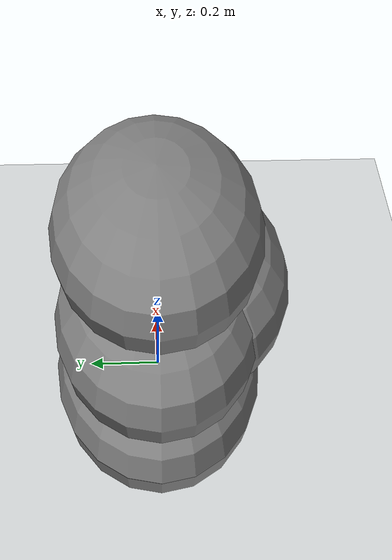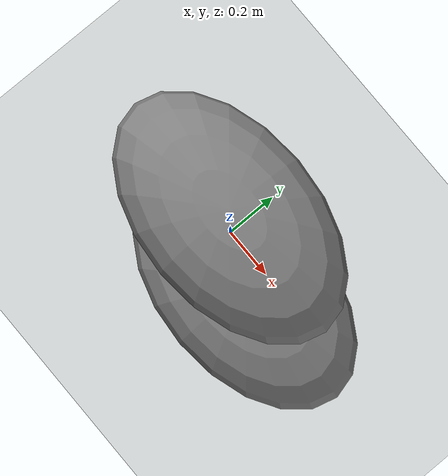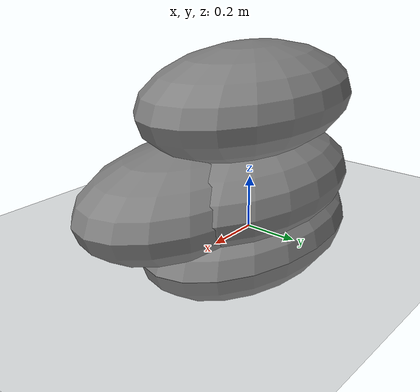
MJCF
<mujoco model="contact_route_plane_ellipsoid">
  <option gravity="0 0 0"/>
  <contact>
    <pair geom1="plane" geom2="ellipsoid_no_contact"/>
    <pair geom1="plane" geom2="ellipsoid_shallow"/>
    <pair geom1="plane" geom2="ellipsoid_deep"/>
    <pair geom1="plane" geom2="ellipsoid_off_axis"/>
  </contact>
  <worldbody>
    <geom name="plane" type="plane" size="2 2 0.1"/>
    <body name="ellipsoid_no_contact" pos="0 0 0.5">
      <freejoint/>
      <inertial pos="0 0 0" mass="1" diaginertia="1 1 1"/>
      <geom name="ellipsoid_no_contact" type="ellipsoid" size="0.5 0.3 0.2"/>
    </body>
    <body name="ellipsoid_shallow" pos="0 0 0.19">
      <freejoint/>
      <inertial pos="0 0 0" mass="1" diaginertia="1 1 1"/>
      <geom name="ellipsoid_shallow" type="ellipsoid" size="0.5 0.3 0.2"/>
    </body>
    <body name="ellipsoid_deep" pos="0 0 0">
      <freejoint/>
      <inertial pos="0 0 0" mass="1" diaginertia="1 1 1"/>
      <geom name="ellipsoid_deep" type="ellipsoid" size="0.5 0.3 0.2"/>
    </body>
    <body name="ellipsoid_off_axis" pos="0.2 -0.1 0.18" euler="0.2 0.3 0.4">
      <freejoint/>
      <inertial pos="0 0 0" mass="1" diaginertia="1 1 1"/>
      <geom name="ellipsoid_off_axis" type="ellipsoid" size="0.5 0.3 0.2"/>
    </body>
  </worldbody>
</mujoco>
